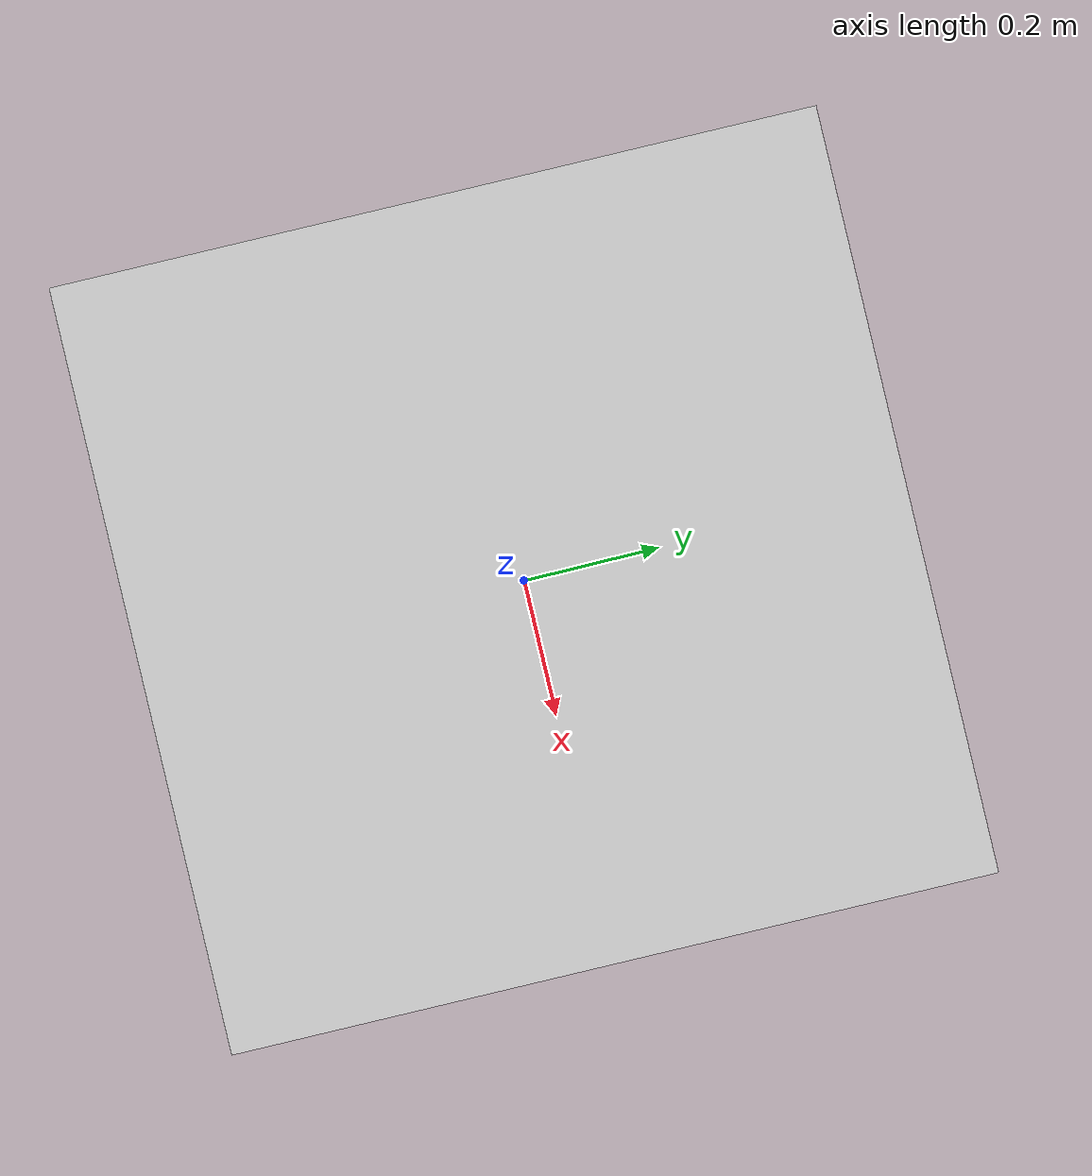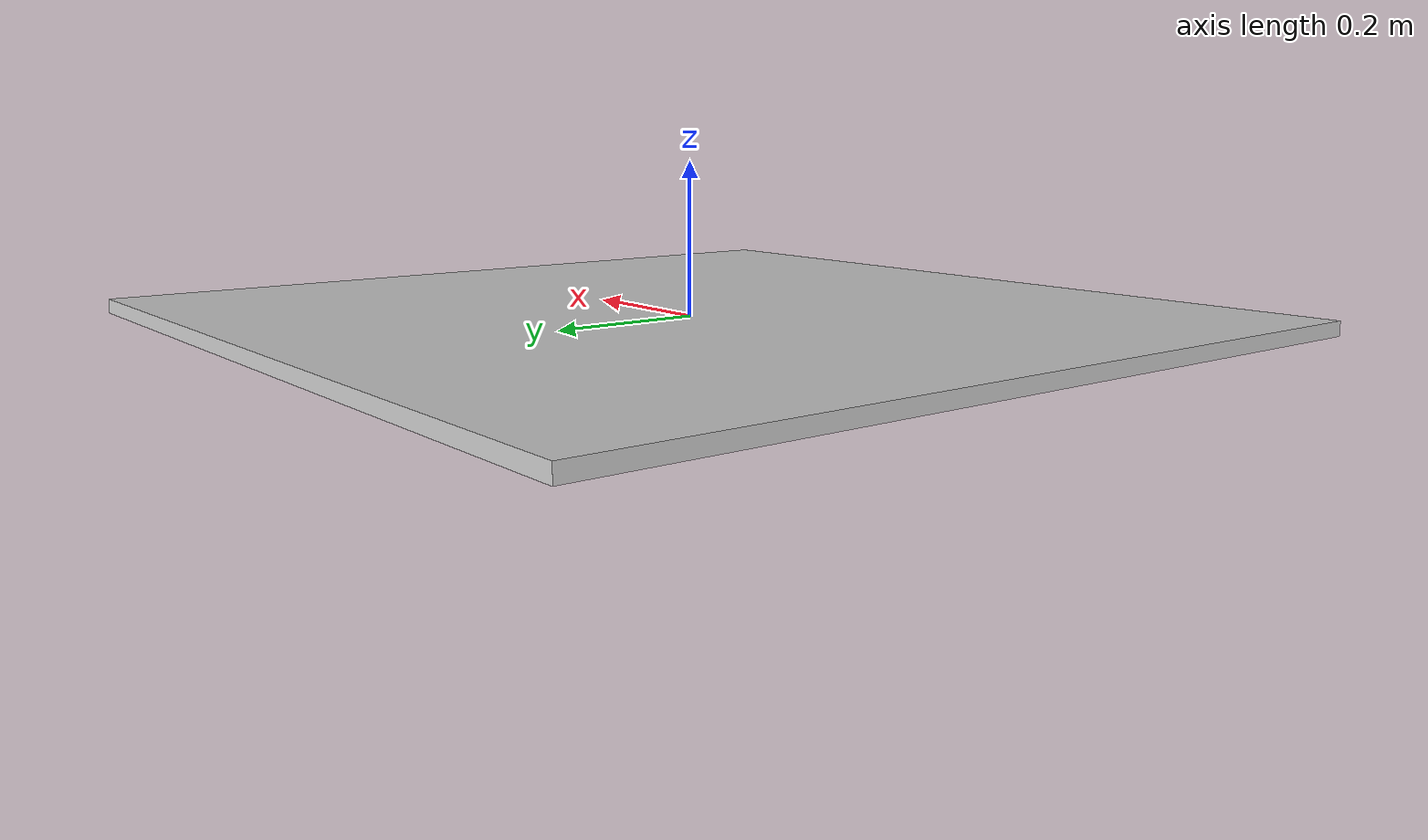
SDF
<?xml version="1.0" ?>
<sdf version="1.4">
  <model name="weazeltable">
    <static>true</static>
    <link name="top">
      <self_collide>false</self_collide>
      <visual name="top_geom_visual">
        <geometry>
          <box>
            <size>1.12713 1.12713 0.01905</size>
          </box>
        </geometry>
        <material>
          <lighting>true</lighting>
          <ambient>0.8 0.8 0.8 1</ambient>
          <diffuse>0.8 0.8 0.8 1</diffuse>
          <specular>0 0 0 1</specular>
          <emissive>0 0 0 1</emissive>
        </material>
      </visual>
    </link>
  </model>
</sdf>
